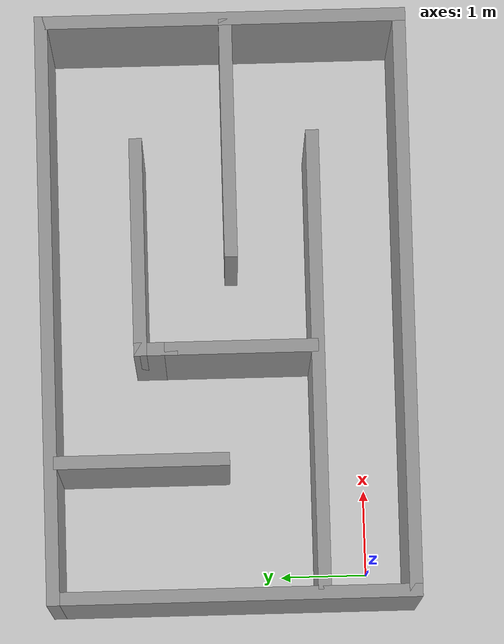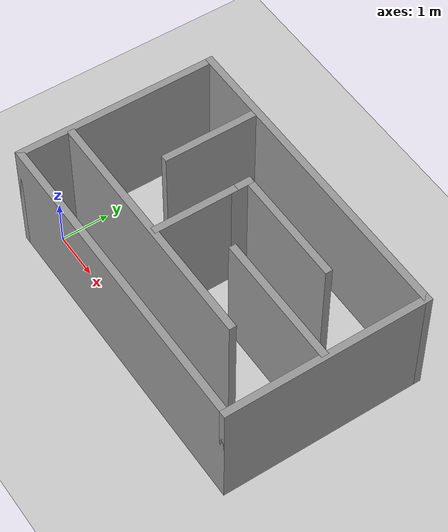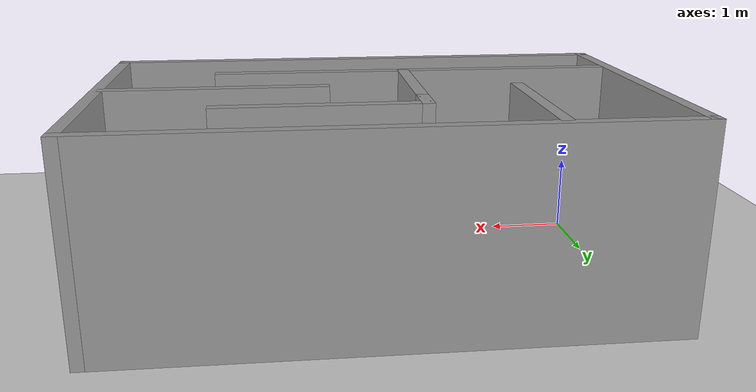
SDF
<sdf version="1.6">
 <world name="default">
  <light name="sun" type="directional">
   <pose>0 0 10 0 -0 0</pose>
   <diffuse>0.8 0.8 0.8 1</diffuse>
   <specular>0.2 0.2 0.2 1</specular>
   <attenuation>
    <range>1000</range>
    <constant>0.9</constant>
    <linear>0.01</linear>
    <quadratic>0.001</quadratic>
   </attenuation>
   <direction>-0.5 0.1 -0.9</direction>
  </light>
  <model name="ground_plane">
   <static>1</static>
   <link name="link">
    <collision name="collision">
     <geometry><plane><normal>0 0 1</normal><size>100 100</size></plane></geometry>
     <surface><friction><ode><mu>100</mu><mu2>50</mu2></ode></friction></surface>
    </collision>
    <visual name="visual">
     <cast_shadows>0</cast_shadows>
     <geometry><plane><normal>0 0 1</normal><size>100 100</size></plane></geometry>
     <material>
      <script><uri>file://media/materials/scripts/gazebo.material</uri><name>Gazebo/Grey</name></script>
     </material>
    </visual>
   </link>
  </model>
  <gravity>0 0 -9.8</gravity>
  <magnetic_field>6e-06 2.3e-05 -4.2e-05</magnetic_field>
  <atmosphere type="adiabatic"/>
  <physics name="default_physics" default="0" type="ode">
   <max_step_size>0.001</max_step_size>
   <real_time_factor>1</real_time_factor>
   <real_time_update_rate>1000</real_time_update_rate>
  </physics>
  <scene><ambient>0.4 0.4 0.4 1</ambient><background>0.7 0.7 0.7 1</background><shadows>1</shadows></scene>
  <audio><device>default</device></audio>
  <spherical_coordinates>
   <surface_model>EARTH_WGS84</surface_model>
   <latitude_deg>0</latitude_deg>
   <longitude_deg>0</longitude_deg>
   <elevation>0</elevation>
   <heading_deg>0</heading_deg>
  </spherical_coordinates>
  <model name="Untitled">
   <pose>2.95993 1.56226 0 0 -0 0</pose>
   <link name="Wall_0">
    <collision name="Wall_0_Collision">
     <geometry><box><size>6.75 0.15 2.5</size></box></geometry>
     <pose>0 0 1.25 0 -0 0</pose>
    </collision>
    <visual name="Wall_0_Visual">
     <pose>0 0 1.25 0 -0 0</pose>
     <geometry><box><size>6.75 0.15 2.5</size></box></geometry>
     <material>
      <script><uri>file://media/materials/scripts/gazebo.material</uri><name>Gazebo/Grey</name></script>
      <ambient>1 1 1 1</ambient>
     </material>
     <meta><layer>0</layer></meta>
    </visual>
    <pose>-0 -2.05 0 0 -0 0</pose>
   </link>
   <link name="Wall_1">
    <collision name="Wall_1_Collision">
     <geometry><box><size>4.25 0.15 2.5</size></box></geometry>
     <pose>0 0 1.25 0 -0 0</pose>
    </collision>
    <visual name="Wall_1_Visual">
     <pose>0 0 1.25 0 -0 0</pose>
     <geometry><box><size>4.25 0.15 2.5</size></box></geometry>
     <material>
      <script><uri>file://media/materials/scripts/gazebo.material</uri><name>Gazebo/Grey</name></script>
      <ambient>1 1 1 1</ambient>
     </material>
     <meta><layer>0</layer></meta>
    </visual>
    <pose>3.3 0 0 0 -0 1.5708</pose>
   </link>
   <link name="Wall_10">
    <collision name="Wall_10_Collision">
     <geometry><box><size>0.5 0.15 2.5</size></box></geometry>
     <pose>0 0 1.25 0 -0 0</pose>
    </collision>
    <visual name="Wall_10_Visual">
     <pose>0 0 1.25 0 -0 0</pose>
     <geometry><box><size>0.5 0.15 2.5</size></box></geometry>
     <material>
      <script><uri>file://media/materials/scripts/gazebo.material</uri><name>Gazebo/Grey</name></script>
      <ambient>1 1 1 1</ambient>
     </material>
     <meta><layer>0</layer></meta>
    </visual>
    <pose>-0.49 0.825 0 0 -0 1.5708</pose>
   </link>
   <link name="Wall_12">
    <collision name="Wall_12_Collision">
     <geometry><box><size>2.5 0.15 2.5</size></box></geometry>
     <pose>0 0 1.25 0 -0 0</pose>
    </collision>
    <visual name="Wall_12_Visual">
     <pose>0 0 1.25 0 -0 0</pose>
     <geometry><box><size>2.5 0.15 2.5</size></box></geometry>
     <material>
      <script><uri>file://media/materials/scripts/gazebo.material</uri><name>Gazebo/Grey</name></script>
      <ambient>1 1 1 1</ambient>
     </material>
     <meta><layer>0</layer></meta>
    </visual>
    <pose>0.685 1 0 0 -0 0</pose>
   </link>
   <link name="Wall_14">
    <collision name="Wall_14_Collision">
     <geometry><box><size>2 0.15 2.5</size></box></geometry>
     <pose>0 0 1.25 0 -0 0</pose>
    </collision>
    <visual name="Wall_14_Visual">
     <pose>0 0 1.25 0 -0 0</pose>
     <geometry><box><size>2 0.15 2.5</size></box></geometry>
     <material>
      <script><uri>file://media/materials/scripts/gazebo.material</uri><name>Gazebo/Grey</name></script>
      <ambient>1 1 1 1</ambient>
     </material>
     <meta><layer>0</layer></meta>
    </visual>
    <pose>-1.76 1.015 0 0 -0 -1.5708</pose>
   </link>
   <link name="Wall_2">
    <collision name="Wall_2_Collision">
     <geometry><box><size>6.75 0.15 2.5</size></box></geometry>
     <pose>0 0 1.25 0 -0 0</pose>
    </collision>
    <visual name="Wall_2_Visual">
     <pose>0 0 1.25 0 -0 0</pose>
     <geometry><box><size>6.75 0.15 2.5</size></box></geometry>
     <material>
      <script><uri>file://media/materials/scripts/gazebo.material</uri><name>Gazebo/Grey</name></script>
      <ambient>1 1 1 1</ambient>
     </material>
     <meta><layer>0</layer></meta>
    </visual>
    <pose>-0 2.05 0 0 -0 3.14159</pose>
   </link>
   <link name="Wall_3">
    <collision name="Wall_3_Collision">
     <geometry><box><size>4.25 0.15 2.5</size></box></geometry>
     <pose>0 0 1.25 0 -0 0</pose>
    </collision>
    <visual name="Wall_3_Visual">
     <pose>0 0 1.25 0 -0 0</pose>
     <geometry><box><size>4.25 0.15 2.5</size></box></geometry>
     <material>
      <script><uri>file://media/materials/scripts/gazebo.material</uri><name>Gazebo/Grey</name></script>
      <ambient>1 1 1 1</ambient>
     </material>
     <meta><layer>0</layer></meta>
    </visual>
    <pose>-3.3 0 0 0 -0 -1.5708</pose>
   </link>
   <link name="Wall_5">
    <collision name="Wall_5_Collision">
     <geometry><box><size>5.25 0.15 2.5</size></box></geometry>
     <pose>0 0 1.25 0 -0 0</pose>
    </collision>
    <visual name="Wall_5_Visual">
     <pose>0 0 1.25 0 -0 0</pose>
     <geometry><box><size>5.25 0.15 2.5</size></box></geometry>
     <material>
      <script><uri>file://media/materials/scripts/gazebo.material</uri><name>Gazebo/Grey</name></script>
      <ambient>1 1 1 1</ambient>
     </material>
     <meta><layer>0</layer></meta>
    </visual>
    <pose>-0.64 -1.02 0 0 -0 0</pose>
   </link>
   <link name="Wall_7">
    <collision name="Wall_7_Collision">
     <geometry><box><size>2.75 0.15 2.5</size></box></geometry>
     <pose>0 0 1.25 0 -0 0</pose>
    </collision>
    <visual name="Wall_7_Visual">
     <pose>0 0 1.25 0 -0 0</pose>
     <geometry><box><size>2.75 0.15 2.5</size></box></geometry>
     <material>
      <script><uri>file://media/materials/scripts/gazebo.material</uri><name>Gazebo/Grey</name></script>
      <ambient>1 1 1 1</ambient>
     </material>
     <meta><layer>0</layer></meta>
    </visual>
    <pose>1.92 -0.06 0 0 -0 3.14159</pose>
   </link>
   <link name="Wall_9">
    <collision name="Wall_9_Collision">
     <geometry><box><size>1.75 0.15 2.5</size></box></geometry>
     <pose>0 0 1.25 0 -0 0</pose>
    </collision>
    <visual name="Wall_9_Visual">
     <pose>0 0 1.25 0 -0 0</pose>
     <geometry><box><size>1.75 0.15 2.5</size></box></geometry>
     <material>
      <script><uri>file://media/materials/scripts/gazebo.material</uri><name>Gazebo/Grey</name></script>
      <ambient>1 1 1 1</ambient>
     </material>
     <meta><layer>0</layer></meta>
    </visual>
    <pose>-0.49 -0.15 0 0 -0 1.5708</pose>
   </link>
   <static>1</static>
  </model>
 </world>
</sdf>
